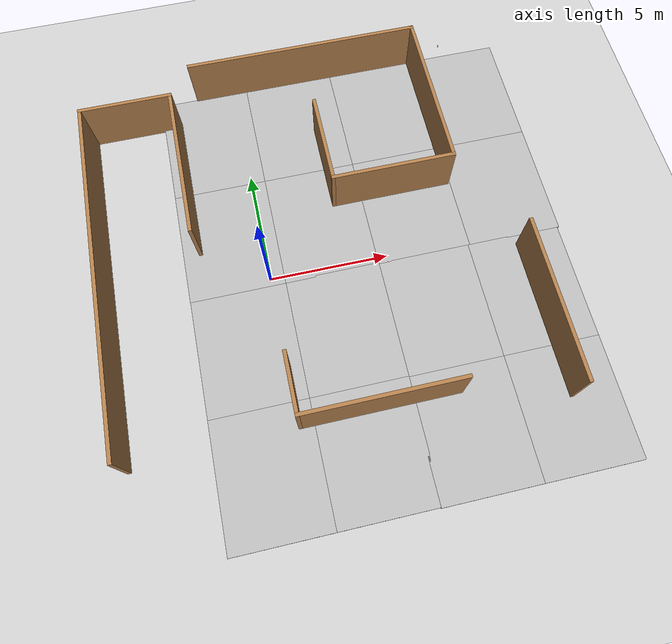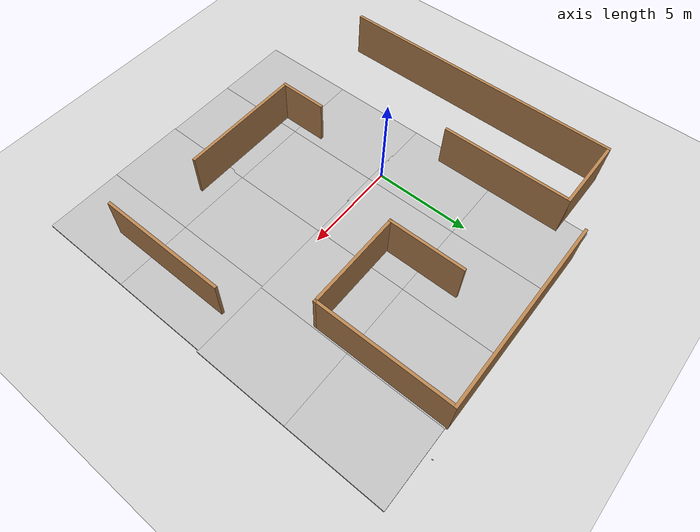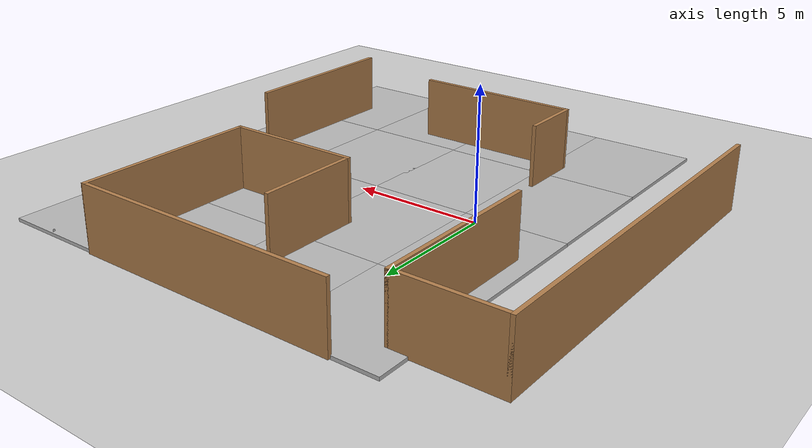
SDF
<sdf version="1.6">
 <world name="default">
  <physics name="default_physics" default="0" type="ode">
   <ode>
    <solver>
     <type>quick</type>
     <iters>20</iters>
     <sor>1</sor>
     <use_dynamic_moi_rescaling>0</use_dynamic_moi_rescaling>
    </solver>
    <constraints>
     <cfm>0</cfm>
     <erp>0.2</erp>
     <contact_max_correcting_vel>100</contact_max_correcting_vel>
     <contact_surface_layer>0</contact_surface_layer>
    </constraints>
   </ode>
   <real_time_update_rate>1000</real_time_update_rate>
   <max_step_size>0.001</max_step_size>
   <real_time_factor>1</real_time_factor>
  </physics>
  <light name="sun" type="directional">
   <pose>0 0 10 0 -0 0</pose>
   <diffuse>0.8 0.8 0.8 1</diffuse>
   <specular>0.2 0.2 0.2 1</specular>
   <attenuation>
    <range>1000</range>
    <constant>0.9</constant>
    <linear>0.01</linear>
    <quadratic>0.001</quadratic>
   </attenuation>
   <direction>-0.5 0.1 -0.9</direction>
  </light>
  <model name="ground_plane">
   <static>1</static>
   <link name="link">
    <collision name="collision">
     <geometry><plane><normal>0 0 1</normal><size>100 100</size></plane></geometry>
     <surface>
      <contact><collide_bitmask>65535</collide_bitmask></contact>
      <friction><ode><mu>100</mu><mu2>50</mu2></ode></friction>
     </surface>
    </collision>
    <visual name="visual">
     <cast_shadows>0</cast_shadows>
     <geometry><plane><normal>0 0 1</normal><size>100 100</size></plane></geometry>
     <material>
      <script><uri>file://media/materials/scripts/gazebo.material</uri><name>Gazebo/Grey</name></script>
     </material>
    </visual>
   </link>
  </model>
  <model name="aruco_marker">
   <static>0</static>
   <link name="marker">
    <gravity>0</gravity>
    <visual name="visual">
     <geometry><box><size>0.09 0.09 0.001</size></box></geometry>
     <material>
      <script>
       <uri>model://aruco_marker/material/scripts</uri>
       <uri>model://aruco_marker/material/textures</uri>
       <name>aruco_marker</name>
      </script>
     </material>
    </visual>
    <collision name="collision"><geometry><box><size>0.09 0.09 0.02</size></box></geometry></collision>
    <inertial>
     <inertia><ixx>1</ixx><ixy>0</ixy><ixz>0</ixz><iyy>1</iyy><iyz>0</iyz><izz>1</izz></inertia>
     <mass>1</mass>
    </inertial>
   </link>
   <pose>10 10 0.5 0 1.5707 0</pose>
  </model>
  <gravity>0 0 -9.81</gravity>
  <magnetic_field>6e-06 2.3e-05 -4.2e-05</magnetic_field>
  <atmosphere type="adiabatic"/>
  <scene><ambient>0.4 0.4 0.4 1</ambient><background>0.7 0.7 0.7 1</background><shadows>1</shadows></scene>
  <audio><device>default</device></audio>
  <spherical_coordinates>
   <surface_model>EARTH_WGS84</surface_model>
   <latitude_deg>0</latitude_deg>
   <longitude_deg>0</longitude_deg>
   <elevation>0</elevation>
   <heading_deg>0</heading_deg>
  </spherical_coordinates>
  <model name="Slam_Test">
   <pose>2.03045 1.16592 0 0 -0 0</pose>
   <link name="Wall_0">
    <collision name="Wall_0_Collision">
     <geometry><box><size>6.5 0.15 2.5</size></box></geometry>
     <pose>0 0 1.25 0 -0 0</pose>
    </collision>
    <visual name="Wall_0_Visual">
     <pose>0 0 1.25 0 -0 0</pose>
     <geometry><box><size>6.5 0.15 2.5</size></box></geometry>
     <material>
      <script><uri>file://media/materials/scripts/gazebo.material</uri><name>Gazebo/Wood</name></script>
      <ambient>1 1 1 1</ambient>
     </material>
     <meta><layer>0</layer></meta>
    </visual>
    <pose>1.19272 -7.44343 0 0 -0 3.14159</pose>
   </link>
   <link name="Wall_1">
    <collision name="Wall_1_Collision">
     <geometry><box><size>2.5 0.15 2.5</size></box></geometry>
     <pose>0 0 1.25 0 -0 0</pose>
    </collision>
    <visual name="Wall_1_Visual">
     <pose>0 0 1.25 0 -0 0</pose>
     <geometry><box><size>2.5 0.15 2.5</size></box></geometry>
     <material>
      <script><uri>file://media/materials/scripts/gazebo.material</uri><name>Gazebo/Wood</name></script>
      <ambient>1 1 1 1</ambient>
     </material>
     <meta><layer>0</layer></meta>
    </visual>
    <pose>-1.98228 -6.26843 0 0 -0 1.5708</pose>
   </link>
   <link name="Wall_10">
    <collision name="Wall_10_Collision">
     <geometry><box><size>4 0.15 2.5</size></box></geometry>
     <pose>0 0 1.25 0 -0 0</pose>
    </collision>
    <visual name="Wall_10_Visual">
     <pose>0 0 1.25 0 -0 0</pose>
     <geometry><box><size>4 0.15 2.5</size></box></geometry>
     <material>
      <script><uri>file://media/materials/scripts/gazebo.material</uri><name>Gazebo/Wood</name></script>
      <ambient>1 1 1 1</ambient>
     </material>
     <meta><layer>0</layer></meta>
    </visual>
    <pose>1.30833 3.60487 0 0 -0 1.5708</pose>
   </link>
   <link name="Wall_17">
    <collision name="Wall_17_Collision">
     <geometry><box><size>15 0.15 2.5</size></box></geometry>
     <pose>0 0 1.25 0 -0 0</pose>
    </collision>
    <visual name="Wall_17_Visual">
     <pose>0 0 1.25 0 -0 0</pose>
     <geometry><box><size>15 0.15 2.5</size></box></geometry>
     <material>
      <script><uri>file://media/materials/scripts/gazebo.material</uri><name>Gazebo/Wood</name></script>
      <ambient>1 1 1 1</ambient>
     </material>
     <meta><layer>0</layer></meta>
    </visual>
    <pose>-8.55237 -0.226962 0 0 -0 1.5708</pose>
   </link>
   <link name="Wall_18">
    <collision name="Wall_18_Collision">
     <geometry><box><size>4 0.15 2.5</size></box></geometry>
     <pose>0 0 1.25 0 -0 0</pose>
    </collision>
    <visual name="Wall_18_Visual">
     <pose>0 0 1.25 0 -0 0</pose>
     <geometry><box><size>4 0.15 2.5</size></box></geometry>
     <material>
      <script><uri>file://media/materials/scripts/gazebo.material</uri><name>Gazebo/Wood</name></script>
      <ambient>1 1 1 1</ambient>
     </material>
     <meta><layer>0</layer></meta>
    </visual>
    <pose>-6.62737 7.19804 0 0 -0 0</pose>
   </link>
   <link name="Wall_19">
    <collision name="Wall_19_Collision">
     <geometry><box><size>6.75 0.15 2.5</size></box></geometry>
     <pose>0 0 1.25 0 -0 0</pose>
    </collision>
    <visual name="Wall_19_Visual">
     <pose>0 0 1.25 0 -0 0</pose>
     <geometry><box><size>6.75 0.15 2.5</size></box></geometry>
     <material>
      <script><uri>file://media/materials/scripts/gazebo.material</uri><name>Gazebo/Wood</name></script>
      <ambient>1 1 1 1</ambient>
     </material>
     <meta><layer>0</layer></meta>
    </visual>
    <pose>-4.70237 3.89804 0 0 -0 -1.5708</pose>
   </link>
   <link name="Wall_5">
    <collision name="Wall_5_Collision">
     <geometry><box><size>6.75 0.15 2.5</size></box></geometry>
     <pose>0 0 1.25 0 -0 0</pose>
    </collision>
    <visual name="Wall_5_Visual">
     <pose>0 0 1.25 0 -0 0</pose>
     <geometry><box><size>6.75 0.15 2.5</size></box></geometry>
     <material>
      <script><uri>file://media/materials/scripts/gazebo.material</uri><name>Gazebo/Wood</name></script>
      <ambient>1 1 1 1</ambient>
     </material>
     <meta><layer>0</layer></meta>
    </visual>
    <pose>8.55237 -5.22987 0 0 -0 -1.5708</pose>
   </link>
   <link name="Wall_7">
    <collision name="Wall_7_Collision">
     <geometry><box><size>10.25 0.15 2.5</size></box></geometry>
     <pose>0 0 1.25 0 -0 0</pose>
    </collision>
    <visual name="Wall_7_Visual">
     <pose>0 0 1.25 0 -0 0</pose>
     <geometry><box><size>10.25 0.15 2.5</size></box></geometry>
     <material>
      <script><uri>file://media/materials/scripts/gazebo.material</uri><name>Gazebo/Wood</name></script>
      <ambient>1 1 1 1</ambient>
     </material>
     <meta><layer>0</layer></meta>
    </visual>
    <pose>1.35833 8.52987 0 0 -0 0</pose>
   </link>
   <link name="Wall_8">
    <collision name="Wall_8_Collision">
     <geometry><box><size>7 0.15 2.5</size></box></geometry>
     <pose>0 0 1.25 0 -0 0</pose>
    </collision>
    <visual name="Wall_8_Visual">
     <pose>0 0 1.25 0 -0 0</pose>
     <geometry><box><size>7 0.15 2.5</size></box></geometry>
     <material>
      <script><uri>file://media/materials/scripts/gazebo.material</uri><name>Gazebo/Wood</name></script>
      <ambient>1 1 1 1</ambient>
     </material>
     <meta><layer>0</layer></meta>
    </visual>
    <pose>6.40833 5.10487 0 0 -0 -1.5708</pose>
   </link>
   <link name="Wall_9">
    <collision name="Wall_9_Collision">
     <geometry><box><size>5.25 0.15 2.5</size></box></geometry>
     <pose>0 0 1.25 0 -0 0</pose>
    </collision>
    <visual name="Wall_9_Visual">
     <pose>0 0 1.25 0 -0 0</pose>
     <geometry><box><size>5.25 0.15 2.5</size></box></geometry>
     <material>
      <script><uri>file://media/materials/scripts/gazebo.material</uri><name>Gazebo/Wood</name></script>
      <ambient>1 1 1 1</ambient>
     </material>
     <meta><layer>0</layer></meta>
    </visual>
    <pose>3.85833 1.67987 0 0 -0 3.14159</pose>
   </link>
   <static>1</static>
  </model>
  <model name="mud_box">
   <static>1</static>
   <link name="link">
    <collision name="collision"><geometry><box><size>8 10 0.2</size></box></geometry></collision>
    <visual name="visual_1">
     <pose>-2 2.5 0 0 -0 0</pose>
     <cast_shadows>0</cast_shadows>
     <geometry><box><size>4 5 0.2</size></box></geometry>
     <material>
      <script>
       <uri>model://mud_box/materials/scripts</uri>
       <uri>model://mud_box/materials/textures</uri>
       <name>vrc/mud</name>
      </script>
     </material>
    </visual>
    <visual name="visual_2">
     <pose>2 2.5 0 0 -0 0</pose>
     <cast_shadows>0</cast_shadows>
     <geometry><box><size>4 5 0.2</size></box></geometry>
     <material>
      <script>
       <uri>model://mud_box/materials/scripts</uri>
       <uri>model://mud_box/materials/textures</uri>
       <name>vrc/mud</name>
      </script>
     </material>
    </visual>
    <visual name="visual_3">
     <pose>2 -2.5 0 0 -0 0</pose>
     <cast_shadows>0</cast_shadows>
     <geometry><box><size>4 5 0.2</size></box></geometry>
     <material>
      <script>
       <uri>model://mud_box/materials/scripts</uri>
       <uri>model://mud_box/materials/textures</uri>
       <name>vrc/mud</name>
      </script>
     </material>
    </visual>
    <visual name="visual_4">
     <pose>-2 -2.5 0 0 -0 0</pose>
     <cast_shadows>0</cast_shadows>
     <geometry><box><size>4 5 0.2</size></box></geometry>
     <material>
      <script>
       <uri>model://mud_box/materials/scripts</uri>
       <uri>model://mud_box/materials/textures</uri>
       <name>vrc/mud</name>
      </script>
     </material>
    </visual>
   </link>
   <pose>0.589896 4.67337 0 0 -0 0</pose>
  </model>
  <model name="mud_box_0">
   <static>1</static>
   <link name="link">
    <collision name="collision"><geometry><box><size>8 10 0.2</size></box></geometry></collision>
    <visual name="visual_1">
     <pose>-2 2.5 0 0 -0 0</pose>
     <cast_shadows>0</cast_shadows>
     <geometry><box><size>4 5 0.2</size></box></geometry>
     <material>
      <script>
       <uri>model://mud_box/materials/scripts</uri>
       <uri>model://mud_box/materials/textures</uri>
       <name>vrc/mud</name>
      </script>
     </material>
    </visual>
    <visual name="visual_2">
     <pose>2 2.5 0 0 -0 0</pose>
     <cast_shadows>0</cast_shadows>
     <geometry><box><size>4 5 0.2</size></box></geometry>
     <material>
      <script>
       <uri>model://mud_box/materials/scripts</uri>
       <uri>model://mud_box/materials/textures</uri>
       <name>vrc/mud</name>
      </script>
     </material>
    </visual>
    <visual name="visual_3">
     <pose>2 -2.5 0 0 -0 0</pose>
     <cast_shadows>0</cast_shadows>
     <geometry><box><size>4 5 0.2</size></box></geometry>
     <material>
      <script>
       <uri>model://mud_box/materials/scripts</uri>
       <uri>model://mud_box/materials/textures</uri>
       <name>vrc/mud</name>
      </script>
     </material>
    </visual>
    <visual name="visual_4">
     <pose>-2 -2.5 0 0 -0 0</pose>
     <cast_shadows>0</cast_shadows>
     <geometry><box><size>4 5 0.2</size></box></geometry>
     <material>
      <script>
       <uri>model://mud_box/materials/scripts</uri>
       <uri>model://mud_box/materials/textures</uri>
       <name>vrc/mud</name>
      </script>
     </material>
    </visual>
   </link>
   <pose>8.5824 4.6773 0 0 -0 0</pose>
  </model>
  <model name="mud_box_1">
   <static>1</static>
   <link name="link">
    <collision name="collision"><geometry><box><size>8 10 0.2</size></box></geometry></collision>
    <visual name="visual_1">
     <pose>-2 2.5 0 0 -0 0</pose>
     <cast_shadows>0</cast_shadows>
     <geometry><box><size>4 5 0.2</size></box></geometry>
     <material>
      <script>
       <uri>model://mud_box/materials/scripts</uri>
       <uri>model://mud_box/materials/textures</uri>
       <name>vrc/mud</name>
      </script>
     </material>
    </visual>
    <visual name="visual_2">
     <pose>2 2.5 0 0 -0 0</pose>
     <cast_shadows>0</cast_shadows>
     <geometry><box><size>4 5 0.2</size></box></geometry>
     <material>
      <script>
       <uri>model://mud_box/materials/scripts</uri>
       <uri>model://mud_box/materials/textures</uri>
       <name>vrc/mud</name>
      </script>
     </material>
    </visual>
    <visual name="visual_3">
     <pose>2 -2.5 0 0 -0 0</pose>
     <cast_shadows>0</cast_shadows>
     <geometry><box><size>4 5 0.2</size></box></geometry>
     <material>
      <script>
       <uri>model://mud_box/materials/scripts</uri>
       <uri>model://mud_box/materials/textures</uri>
       <name>vrc/mud</name>
      </script>
     </material>
    </visual>
    <visual name="visual_4">
     <pose>-2 -2.5 0 0 -0 0</pose>
     <cast_shadows>0</cast_shadows>
     <geometry><box><size>4 5 0.2</size></box></geometry>
     <material>
      <script>
       <uri>model://mud_box/materials/scripts</uri>
       <uri>model://mud_box/materials/textures</uri>
       <name>vrc/mud</name>
      </script>
     </material>
    </visual>
   </link>
   <pose>0.598323 -5.25968 0 0 -0 0</pose>
  </model>
  <model name="mud_box_2">
   <static>1</static>
   <link name="link">
    <collision name="collision"><geometry><box><size>8 10 0.2</size></box></geometry></collision>
    <visual name="visual_1">
     <pose>-2 2.5 0 0 -0 0</pose>
     <cast_shadows>0</cast_shadows>
     <geometry><box><size>4 5 0.2</size></box></geometry>
     <material>
      <script>
       <uri>model://mud_box/materials/scripts</uri>
       <uri>model://mud_box/materials/textures</uri>
       <name>vrc/mud</name>
      </script>
     </material>
    </visual>
    <visual name="visual_2">
     <pose>2 2.5 0 0 -0 0</pose>
     <cast_shadows>0</cast_shadows>
     <geometry><box><size>4 5 0.2</size></box></geometry>
     <material>
      <script>
       <uri>model://mud_box/materials/scripts</uri>
       <uri>model://mud_box/materials/textures</uri>
       <name>vrc/mud</name>
      </script>
     </material>
    </visual>
    <visual name="visual_3">
     <pose>2 -2.5 0 0 -0 0</pose>
     <cast_shadows>0</cast_shadows>
     <geometry><box><size>4 5 0.2</size></box></geometry>
     <material>
      <script>
       <uri>model://mud_box/materials/scripts</uri>
       <uri>model://mud_box/materials/textures</uri>
       <name>vrc/mud</name>
      </script>
     </material>
    </visual>
    <visual name="visual_4">
     <pose>-2 -2.5 0 0 -0 0</pose>
     <cast_shadows>0</cast_shadows>
     <geometry><box><size>4 5 0.2</size></box></geometry>
     <material>
      <script>
       <uri>model://mud_box/materials/scripts</uri>
       <uri>model://mud_box/materials/textures</uri>
       <name>vrc/mud</name>
      </script>
     </material>
    </visual>
   </link>
   <pose>8.50202 -5.29008 0 0 -0 0</pose>
  </model>
 </world>
</sdf>
